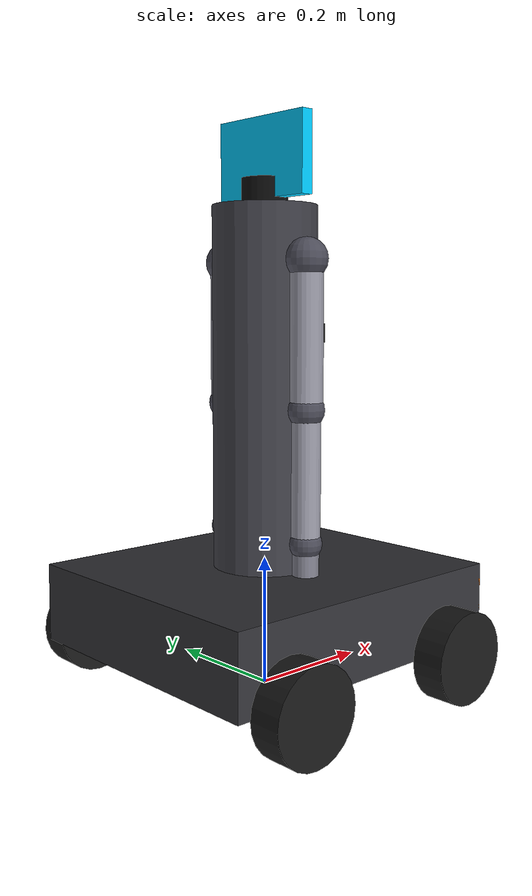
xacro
<?xml version="1.0"?>
<robot name="tidybot" xmlns:xacro="http://www.ros.org/wiki/xacro">

  <!-- ==================== PROPERTIES ==================== -->
  <xacro:property name="PI" value="3.14159265358979"/>

  <!-- Base dimensions -->
  <xacro:property name="base_length"  value="0.50"/>
  <xacro:property name="base_width"   value="0.45"/>
  <xacro:property name="base_height"  value="0.12"/>
  <xacro:property name="base_mass"    value="8.0"/>

  <!-- Wheel dimensions -->
  <xacro:property name="wheel_radius" value="0.07"/>
  <xacro:property name="wheel_width"  value="0.05"/>
  <xacro:property name="wheel_mass"   value="0.8"/>
  <!-- Wheel x offset from base center -->
  <xacro:property name="wheel_x_off"  value="0.16"/>
  <!-- Wheel y offset: half base width + half wheel width -->
  <xacro:property name="wheel_y_off"  value="0.25"/>

  <!-- Torso dimensions -->
  <xacro:property name="torso_radius" value="0.08"/>
  <xacro:property name="torso_height" value="0.55"/>
  <xacro:property name="torso_mass"   value="3.5"/>

  <!-- Arm link dimensions -->
  <xacro:property name="upper_arm_len"  value="0.22"/>
  <xacro:property name="upper_arm_r"    value="0.025"/>
  <xacro:property name="upper_arm_mass" value="0.6"/>

  <xacro:property name="forearm_len"    value="0.20"/>
  <xacro:property name="forearm_r"      value="0.022"/>
  <xacro:property name="forearm_mass"   value="0.45"/>

  <xacro:property name="hand_len"       value="0.10"/>
  <xacro:property name="hand_r"         value="0.020"/>
  <xacro:property name="hand_mass"      value="0.25"/>

  <!-- Gripper -->
  <xacro:property name="finger_len"     value="0.06"/>
  <xacro:property name="finger_w"       value="0.015"/>
  <xacro:property name="finger_h"       value="0.012"/>
  <xacro:property name="finger_mass"    value="0.05"/>

  <!-- Head / LED face -->
  <xacro:property name="face_w"  value="0.18"/>
  <xacro:property name="face_h"  value="0.12"/>
  <xacro:property name="face_d"  value="0.02"/>
  <xacro:property name="face_mass" value="0.15"/>

  <!-- Camera -->
  <xacro:property name="cam_w"  value="0.04"/>
  <xacro:property name="cam_h"  value="0.03"/>
  <xacro:property name="cam_d"  value="0.03"/>
  <xacro:property name="cam_mass" value="0.08"/>

  <!-- LiDAR -->
  <xacro:property name="lidar_r" value="0.035"/>
  <xacro:property name="lidar_h" value="0.04"/>
  <xacro:property name="lidar_mass" value="0.18"/>

  <!-- ==================== INERTIA MACROS ==================== -->
  <xacro:macro name="box_inertia" params="m w h d">
    <inertial>
      <mass value="${m}"/>
      <inertia
        ixx="${m/12.0*(h*h+d*d)}"
        ixy="0" ixz="0"
        iyy="${m/12.0*(w*w+d*d)}"
        iyz="0"
        izz="${m/12.0*(w*w+h*h)}"/>
    </inertial>
  </xacro:macro>

  <xacro:macro name="cylinder_inertia" params="m r h">
    <inertial>
      <mass value="${m}"/>
      <inertia
        ixx="${m/12.0*(3*r*r+h*h)}"
        ixy="0" ixz="0"
        iyy="${m/12.0*(3*r*r+h*h)}"
        iyz="0"
        izz="${m/2.0*r*r}"/>
    </inertial>
  </xacro:macro>

  <xacro:macro name="sphere_inertia" params="m r">
    <inertial>
      <mass value="${m}"/>
      <inertia
        ixx="${2.0/5.0*m*r*r}"
        ixy="0" ixz="0"
        iyy="${2.0/5.0*m*r*r}"
        iyz="0"
        izz="${2.0/5.0*m*r*r}"/>
    </inertial>
  </xacro:macro>

  <!-- ==================== WHEEL MACRO ==================== -->
  <xacro:macro name="wheel" params="name x_sign y_sign">
    <link name="${name}_wheel">
      <xacro:cylinder_inertia m="${wheel_mass}" r="${wheel_radius}" h="${wheel_width}"/>
      <visual>
        <origin xyz="0 0 0" rpy="${PI/2} 0 0"/>
        <geometry>
          <cylinder radius="${wheel_radius}" length="${wheel_width}"/>
        </geometry>
        <material name="${name}_wheel_rubber">
          <color rgba="0.1 0.1 0.1 1"/>
        </material>
      </visual>
      <collision>
        <origin xyz="0 0 0" rpy="${PI/2} 0 0"/>
        <geometry>
          <cylinder radius="${wheel_radius}" length="${wheel_width}"/>
        </geometry>
      </collision>
    </link>

    <joint name="${name}_wheel_joint" type="continuous">
      <parent link="base_link"/>
      <child  link="${name}_wheel"/>
      <origin xyz="${x_sign*wheel_x_off} ${y_sign*wheel_y_off} ${-base_height/2.0}" rpy="0 0 0"/>
      <axis xyz="0 1 0"/>
      <dynamics damping="0.05" friction="0.1"/>
    </joint>

    <gazebo reference="${name}_wheel">
      <material>Gazebo/DarkGrey</material>
      <mu1>1.2</mu1>
      <mu2>1.0</mu2>
      <kp>1000000.0</kp>
      <kd>100.0</kd>
    </gazebo>
  </xacro:macro>

  <!-- ==================== ARM MACRO ==================== -->
  <!-- side: "right" or "left", y_sign: +1 or -1, actuated: true/false -->
  <xacro:macro name="robot_arm" params="side y_sign actuated">

    <!-- Shoulder joint -->
    <joint name="${side}_shoulder_joint" type="${actuated == 'true' and 'revolute' or 'fixed'}">
      <parent link="torso_link"/>
      <child  link="${side}_upper_arm"/>
      <origin xyz="0 ${y_sign*(torso_radius+0.01)} ${torso_height*0.35}" rpy="0 0 0"/>
      <axis xyz="0 1 0"/>
      <xacro:if value="${actuated == 'true'}">
        <limit lower="-2.8" upper="0.3" effort="30.0" velocity="1.5"/>
        <dynamics damping="0.5" friction="0.2"/>
      </xacro:if>
    </joint>

    <link name="${side}_upper_arm">
      <xacro:cylinder_inertia m="${upper_arm_mass}" r="${upper_arm_r}" h="${upper_arm_len}"/>
      <visual>
        <origin xyz="0 0 ${-upper_arm_len/2.0}" rpy="0 0 0"/>
        <geometry>
          <cylinder radius="${upper_arm_r}" length="${upper_arm_len}"/>
        </geometry>
        <material name="${side}_upper_arm_color">
          <color rgba="0.6 0.6 0.65 1"/>
        </material>
      </visual>
      <!-- Shoulder housing visual -->
      <visual>
        <origin xyz="0 0 0" rpy="0 0 0"/>
        <geometry>
          <sphere radius="0.032"/>
        </geometry>
        <material name="${side}_shoulder_housing">
          <color rgba="0.3 0.3 0.35 1"/>
        </material>
      </visual>
      <collision>
        <origin xyz="0 0 ${-upper_arm_len/2.0}" rpy="0 0 0"/>
        <geometry>
          <cylinder radius="${upper_arm_r}" length="${upper_arm_len}"/>
        </geometry>
      </collision>
    </link>

    <!-- Elbow joint -->
    <joint name="${side}_elbow_joint" type="${actuated == 'true' and 'revolute' or 'fixed'}">
      <parent link="${side}_upper_arm"/>
      <child  link="${side}_forearm"/>
      <origin xyz="0 0 ${-upper_arm_len}" rpy="0 0 0"/>
      <axis xyz="0 1 0"/>
      <xacro:if value="${actuated == 'true'}">
        <limit lower="-2.5" upper="0.1" effort="20.0" velocity="1.5"/>
        <dynamics damping="0.4" friction="0.15"/>
      </xacro:if>
    </joint>

    <link name="${side}_forearm">
      <xacro:cylinder_inertia m="${forearm_mass}" r="${forearm_r}" h="${forearm_len}"/>
      <visual>
        <origin xyz="0 0 ${-forearm_len/2.0}" rpy="0 0 0"/>
        <geometry>
          <cylinder radius="${forearm_r}" length="${forearm_len}"/>
        </geometry>
        <material name="${side}_forearm_color">
          <color rgba="0.6 0.6 0.65 1"/>
        </material>
      </visual>
      <!-- Elbow housing -->
      <visual>
        <origin xyz="0 0 0" rpy="0 0 0"/>
        <geometry>
          <sphere radius="0.028"/>
        </geometry>
        <material name="${side}_elbow_housing">
          <color rgba="0.3 0.3 0.35 1"/>
        </material>
      </visual>
      <collision>
        <origin xyz="0 0 ${-forearm_len/2.0}" rpy="0 0 0"/>
        <geometry>
          <cylinder radius="${forearm_r}" length="${forearm_len}"/>
        </geometry>
      </collision>
    </link>

    <!-- Wrist joint -->
    <joint name="${side}_wrist_joint" type="${actuated == 'true' and 'revolute' or 'fixed'}">
      <parent link="${side}_forearm"/>
      <child  link="${side}_hand"/>
      <origin xyz="0 0 ${-forearm_len}" rpy="0 0 0"/>
      <axis xyz="0 1 0"/>
      <xacro:if value="${actuated == 'true'}">
        <limit lower="-1.57" upper="1.57" effort="10.0" velocity="2.0"/>
        <dynamics damping="0.3" friction="0.1"/>
      </xacro:if>
    </joint>

    <link name="${side}_hand">
      <xacro:cylinder_inertia m="${hand_mass}" r="${hand_r}" h="${hand_len}"/>
      <visual>
        <origin xyz="0 0 ${-hand_len/2.0}" rpy="0 0 0"/>
        <geometry>
          <cylinder radius="${hand_r}" length="${hand_len}"/>
        </geometry>
        <material name="${side}_hand_color">
          <color rgba="0.5 0.5 0.55 1"/>
        </material>
      </visual>
      <!-- Wrist housing -->
      <visual>
        <origin xyz="0 0 0" rpy="0 0 0"/>
        <geometry>
          <sphere radius="0.025"/>
        </geometry>
        <material name="${side}_wrist_housing">
          <color rgba="0.3 0.3 0.35 1"/>
        </material>
      </visual>
      <collision>
        <origin xyz="0 0 ${-hand_len/2.0}" rpy="0 0 0"/>
        <geometry>
          <cylinder radius="${hand_r}" length="${hand_len}"/>
        </geometry>
      </collision>
    </link>

    <!-- Gripper (only on actuated arm) -->
    <xacro:if value="${actuated == 'true'}">
      <!-- Left finger -->
      <joint name="${side}_finger_left_joint" type="prismatic">
        <parent link="${side}_hand"/>
        <child  link="${side}_finger_left"/>
        <origin xyz="${-finger_w-0.005} 0 ${-hand_len-finger_len/2.0}" rpy="0 0 0"/>
        <axis xyz="1 0 0"/>
        <limit lower="0.0" upper="0.04" effort="5.0" velocity="0.1"/>
        <dynamics damping="0.1" friction="0.05"/>
      </joint>
      <link name="${side}_finger_left">
        <xacro:box_inertia m="${finger_mass}" w="${finger_w}" h="${finger_h}" d="${finger_len}"/>
        <visual>
          <origin xyz="0 0 0" rpy="0 0 0"/>
          <geometry>
            <box size="${finger_w} ${finger_h} ${finger_len}"/>
          </geometry>
          <material name="${side}_finger_left_color">
            <color rgba="0.8 0.4 0.1 1"/>
          </material>
        </visual>
        <collision>
          <origin xyz="0 0 0" rpy="0 0 0"/>
          <geometry>
            <box size="${finger_w} ${finger_h} ${finger_len}"/>
          </geometry>
        </collision>
      </link>

      <!-- Right finger -->
      <joint name="${side}_finger_right_joint" type="prismatic">
        <parent link="${side}_hand"/>
        <child  link="${side}_finger_right"/>
        <origin xyz="${finger_w+0.005} 0 ${-hand_len-finger_len/2.0}" rpy="0 0 0"/>
        <axis xyz="-1 0 0"/>
        <limit lower="0.0" upper="0.04" effort="5.0" velocity="0.1"/>
        <dynamics damping="0.1" friction="0.05"/>
      </joint>
      <link name="${side}_finger_right">
        <xacro:box_inertia m="${finger_mass}" w="${finger_w}" h="${finger_h}" d="${finger_len}"/>
        <visual>
          <origin xyz="0 0 0" rpy="0 0 0"/>
          <geometry>
            <box size="${finger_w} ${finger_h} ${finger_len}"/>
          </geometry>
          <material name="${side}_finger_right_color">
            <color rgba="0.8 0.4 0.1 1"/>
          </material>
        </visual>
        <collision>
          <origin xyz="0 0 0" rpy="0 0 0"/>
          <geometry>
            <box size="${finger_w} ${finger_h} ${finger_len}"/>
          </geometry>
        </collision>
      </link>
    </xacro:if>

    <!-- Cosmetic arm end cap (non-actuated) -->
    <xacro:unless value="${actuated == 'true'}">
      <joint name="${side}_endcap_joint" type="fixed">
        <parent link="${side}_hand"/>
        <child  link="${side}_endcap"/>
        <origin xyz="0 0 ${-hand_len}" rpy="0 0 0"/>
      </joint>
      <link name="${side}_endcap">
        <xacro:sphere_inertia m="0.05" r="0.022"/>
        <visual>
          <origin xyz="0 0 0" rpy="0 0 0"/>
          <geometry><sphere radius="0.022"/></geometry>
          <material name="${side}_endcap_color">
            <color rgba="0.4 0.4 0.45 1"/>
          </material>
        </visual>
        <collision>
          <origin xyz="0 0 0" rpy="0 0 0"/>
          <geometry><sphere radius="0.022"/></geometry>
        </collision>
      </link>
    </xacro:unless>

    <!-- Gazebo materials for arm links -->
    <gazebo reference="${side}_upper_arm">
      <material>Gazebo/Grey</material>
    </gazebo>
    <gazebo reference="${side}_forearm">
      <material>Gazebo/Grey</material>
    </gazebo>
    <gazebo reference="${side}_hand">
      <material>Gazebo/DarkGrey</material>
    </gazebo>
  </xacro:macro>

  <!-- ==================== BASE FOOTPRINT ==================== -->
  <link name="base_footprint"/>

  <joint name="base_footprint_joint" type="fixed">
    <parent link="base_footprint"/>
    <child  link="base_link"/>
    <!-- base_link center is at wheel_radius + base_height/2 above ground -->
    <origin xyz="0 0 ${wheel_radius + base_height/2.0}" rpy="0 0 0"/>
  </joint>

  <!-- ==================== BASE LINK ==================== -->
  <link name="base_link">
    <xacro:box_inertia m="${base_mass}" w="${base_width}" h="${base_height}" d="${base_length}"/>
    <visual>
      <origin xyz="0 0 0" rpy="0 0 0"/>
      <geometry>
        <box size="${base_length} ${base_width} ${base_height}"/>
      </geometry>
      <material name="base_dark">
        <color rgba="0.2 0.2 0.22 1"/>
      </material>
    </visual>
    <!-- Bumper strip visual -->
    <visual>
      <origin xyz="${base_length/2.0-0.005} 0 0" rpy="0 0 0"/>
      <geometry>
        <box size="0.01 ${base_width} ${base_height*0.6}"/>
      </geometry>
      <material name="base_bumper">
        <color rgba="0.9 0.4 0.0 1"/>
      </material>
    </visual>
    <collision>
      <origin xyz="0 0 0" rpy="0 0 0"/>
      <geometry>
        <box size="${base_length} ${base_width} ${base_height}"/>
      </geometry>
    </collision>
  </link>

  <gazebo reference="base_link">
    <material>Gazebo/DarkGrey</material>
    <mu1>0.5</mu1>
    <mu2>0.5</mu2>
  </gazebo>

  <!-- ==================== FOUR WHEELS ==================== -->
  <xacro:wheel name="front_left"  x_sign="1"  y_sign="1"/>
  <xacro:wheel name="front_right" x_sign="1"  y_sign="-1"/>
  <xacro:wheel name="rear_left"   x_sign="-1" y_sign="1"/>
  <xacro:wheel name="rear_right"  x_sign="-1" y_sign="-1"/>

  <!-- ==================== TORSO ==================== -->
  <joint name="torso_joint" type="fixed">
    <parent link="base_link"/>
    <child  link="torso_link"/>
    <origin xyz="0 0 ${base_height/2.0 + torso_height/2.0}" rpy="0 0 0"/>
  </joint>

  <link name="torso_link">
    <xacro:cylinder_inertia m="${torso_mass}" r="${torso_radius}" h="${torso_height}"/>
    <visual>
      <origin xyz="0 0 0" rpy="0 0 0"/>
      <geometry>
        <cylinder radius="${torso_radius}" length="${torso_height}"/>
      </geometry>
      <material name="torso_color">
        <color rgba="0.25 0.25 0.28 1"/>
      </material>
    </visual>
    <collision>
      <origin xyz="0 0 0" rpy="0 0 0"/>
      <geometry>
        <cylinder radius="${torso_radius}" length="${torso_height}"/>
      </geometry>
    </collision>
  </link>

  <gazebo reference="torso_link">
    <material>Gazebo/DarkGrey</material>
  </gazebo>

  <!-- ==================== HEAD / LED FACE ==================== -->
  <joint name="head_joint" type="fixed">
    <parent link="torso_link"/>
    <child  link="head_link"/>
    <origin xyz="0 0 ${torso_height/2.0 + face_h/2.0 + 0.01}" rpy="0 0 0"/>
  </joint>

  <link name="head_link">
    <xacro:box_inertia m="${face_mass}" w="${face_w}" h="${face_h}" d="${face_d}"/>
    <visual>
      <origin xyz="0 0 0" rpy="0 0 0"/>
      <geometry>
        <box size="${face_d} ${face_w} ${face_h}"/>
      </geometry>
      <material name="led_face">
        <color rgba="0.0 0.8 1.0 1"/>
      </material>
    </visual>
    <collision>
      <origin xyz="0 0 0" rpy="0 0 0"/>
      <geometry>
        <box size="${face_d} ${face_w} ${face_h}"/>
      </geometry>
    </collision>
  </link>

  <gazebo reference="head_link">
    <material>Gazebo/Cyan</material>
  </gazebo>

  <!-- ==================== CAMERA (on torso, facing forward) ==================== -->
  <joint name="camera_joint" type="fixed">
    <parent link="torso_link"/>
    <child  link="camera_link"/>
    <!-- Mounted on front face of torso, slightly above center -->
    <origin xyz="${torso_radius+cam_d/2.0} 0 ${torso_height*0.15}" rpy="0 0 0"/>
  </joint>

  <link name="camera_link">
    <xacro:box_inertia m="${cam_mass}" w="${cam_w}" h="${cam_h}" d="${cam_d}"/>
    <visual>
      <origin xyz="0 0 0" rpy="0 0 0"/>
      <geometry>
        <box size="${cam_d} ${cam_w} ${cam_h}"/>
      </geometry>
      <material name="camera_body">
        <color rgba="0.1 0.1 0.1 1"/>
      </material>
    </visual>
    <!-- Lens -->
    <visual>
      <origin xyz="${cam_d/2.0+0.005} 0 0" rpy="0 ${PI/2} 0"/>
      <geometry>
        <cylinder radius="0.010" length="0.008"/>
      </geometry>
      <material name="camera_lens">
        <color rgba="0.05 0.05 0.05 1"/>
      </material>
    </visual>
    <collision>
      <origin xyz="0 0 0" rpy="0 0 0"/>
      <geometry>
        <box size="${cam_d} ${cam_w} ${cam_h}"/>
      </geometry>
    </collision>
  </link>

  <!-- Camera optical frame -->
  <joint name="camera_optical_joint" type="fixed">
    <parent link="camera_link"/>
    <child  link="camera_optical_frame"/>
    <origin xyz="0 0 0" rpy="${-PI/2} 0 ${-PI/2}"/>
  </joint>
  <link name="camera_optical_frame"/>

  <gazebo reference="camera_link">
    <material>Gazebo/Black</material>
    <sensor name="front_camera" type="camera">
      <always_on>true</always_on>
      <update_rate>30</update_rate>
      <camera>
        <horizontal_fov>1.047</horizontal_fov>
        <image>
          <width>640</width>
          <height>480</height>
          <format>R8G8B8</format>
        </image>
        <clip>
          <near>0.05</near>
          <far>20.0</far>
        </clip>
      </camera>
      <topic>/camera/image_raw</topic>
      <gz_frame_id>camera_optical_frame</gz_frame_id>
    </sensor>
  </gazebo>

  <!-- ==================== LIDAR (on top of torso) ==================== -->
  <joint name="lidar_joint" type="fixed">
    <parent link="torso_link"/>
    <child  link="lidar_link"/>
    <origin xyz="0 0 ${torso_height/2.0 + lidar_h/2.0}" rpy="0 0 0"/>
  </joint>

  <link name="lidar_link">
    <xacro:cylinder_inertia m="${lidar_mass}" r="${lidar_r}" h="${lidar_h}"/>
    <visual>
      <origin xyz="0 0 0" rpy="0 0 0"/>
      <geometry>
        <cylinder radius="${lidar_r}" length="${lidar_h}"/>
      </geometry>
      <material name="lidar_body">
        <color rgba="0.05 0.05 0.05 1"/>
      </material>
    </visual>
    <collision>
      <origin xyz="0 0 0" rpy="0 0 0"/>
      <geometry>
        <cylinder radius="${lidar_r}" length="${lidar_h}"/>
      </geometry>
    </collision>
  </link>

  <gazebo reference="lidar_link">
    <material>Gazebo/Black</material>
    <sensor name="lidar" type="gpu_lidar">
      <always_on>true</always_on>
      <update_rate>10</update_rate>
      <topic>/scan</topic>
      <gz_frame_id>lidar_link</gz_frame_id>
      <lidar>
        <scan>
          <horizontal>
            <samples>360</samples>
            <resolution>1</resolution>
            <min_angle>-3.14159</min_angle>
            <max_angle>3.14159</max_angle>
          </horizontal>
        </scan>
        <range>
          <min>0.10</min>
          <max>12.0</max>
          <resolution>0.01</resolution>
        </range>
        <noise>
          <type>gaussian</type>
          <mean>0.0</mean>
          <stddev>0.01</stddev>
        </noise>
      </lidar>
    </sensor>
  </gazebo>

  <!-- ==================== ARMS ==================== -->
  <!-- Right arm: actuated (3-DOF + gripper) -->
  <xacro:robot_arm side="right" y_sign="1" actuated="true"/>

  <!-- Left arm: cosmetic (fixed joints, no gripper) -->
  <xacro:robot_arm side="left" y_sign="-1" actuated="false"/>

  <!-- ==================== GAZEBO PLUGINS ==================== -->

  <!-- Skid-steer drive plugin -->
  <gazebo>
    <plugin filename="gz-sim-diff-drive-system"
            name="gz::sim::systems::DiffDrive">
      <!-- Using front wheels for primary drive, rear follow -->
      <left_joint>front_left_wheel_joint</left_joint>
      <right_joint>front_right_wheel_joint</right_joint>
      <left_joint>rear_left_wheel_joint</left_joint>
      <right_joint>rear_right_wheel_joint</right_joint>
      <wheel_separation>${wheel_y_off*2.0}</wheel_separation>
      <wheel_radius>${wheel_radius}</wheel_radius>
      <max_linear_acceleration>2.0</max_linear_acceleration>
      <max_angular_acceleration>4.0</max_angular_acceleration>
      <topic>cmd_vel</topic>
      <odom_topic>odom</odom_topic>
      <frame_id>odom</frame_id>
      <child_frame_id>base_footprint</child_frame_id>
      <odom_publish_frequency>20</odom_publish_frequency>
    </plugin>

    <!-- Joint state publisher -->
    <plugin filename="gz-sim-joint-state-publisher-system"
            name="gz::sim::systems::JointStatePublisher">
      <topic>joint_states</topic>
    </plugin>

    <!-- Pose publisher for ground truth -->
    <plugin filename="gz-sim-pose-publisher-system"
            name="gz::sim::systems::PosePublisher">
      <publish_link_pose>true</publish_link_pose>
      <publish_nested_model_pose>true</publish_nested_model_pose>
      <update_frequency>10</update_frequency>
    </plugin>
  </gazebo>

</robot>
